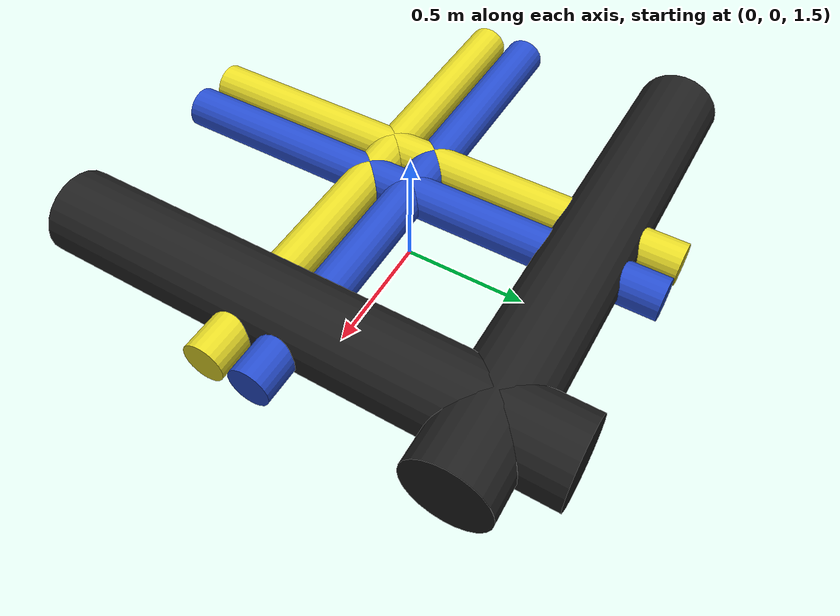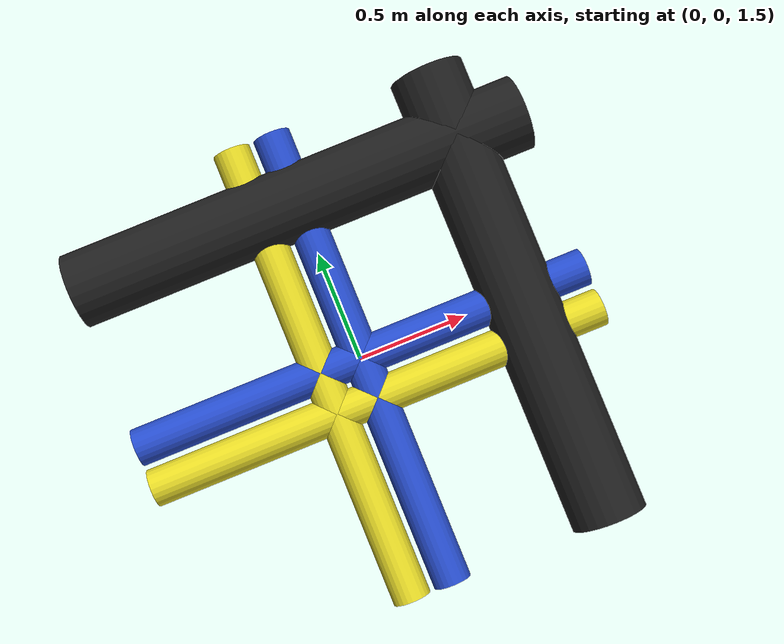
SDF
<?xml version='1.0'?>
<sdf version='1.6'>
  <model name='pipe_one'>
    <static>1</static>
    <pose frame=''>0 0 1.84 0 0 0</pose>
    <link name='link_0'>
      <visual name='visual'>
        <pose frame=''>0 0 0 1.57 0 0</pose>
        <geometry>
          <cylinder>
            <radius>0.08</radius>
            <length>2</length>
          </cylinder>
        </geometry>
        <material>
          <script>
            <uri>file://media/materials/scripts/gazebo.material</uri>
            <name>Gazebo/Blue</name>
          </script>
        </material>
      </visual>
      <collision name='collision'>
        <pose frame=''>0 0 0 1.57 0 0</pose>
        <geometry>
          <cylinder>
            <radius>0.08</radius>
            <length>2</length>
          </cylinder>
        </geometry>
      </collision>
    </link>
  </model>
  <model name='pipe_two'>
    <static>1</static>
    <pose frame=''>0 0 1.84 0 0 0</pose>
    <link name='link_0'>
      <visual name='visual'>
        <pose frame=''>0.7 0 0 1.57 0 0</pose>
        <geometry>
          <cylinder>
            <radius>0.16</radius>
            <length>2</length>
          </cylinder>
        </geometry>
        <material>
          <script>
            <uri>file://media/materials/scripts/gazebo.material</uri>
            <name>Gazebo/Black</name>
          </script>
        </material>
      </visual>
      <collision name='collision'>
        <pose frame=''>0.7 0 0 1.57 0 0</pose>
        <geometry>
          <cylinder>
            <radius>0.16</radius>
            <length>2</length>
          </cylinder>
        </geometry>
      </collision>
    </link>
  </model>
  <model name='pipe_three'>
    <static>1</static>
    <pose frame=''>0 0 1.84 0 0 0</pose>
    <link name='link_0'>
      <visual name='visual'>
        <pose frame=''>-0.18 0 0 1.57 0 0</pose>
        <geometry>
          <cylinder>
            <radius>0.08</radius>
            <length>2</length>
          </cylinder>
        </geometry>
        <material>
          <script>
            <uri>file://media/materials/scripts/gazebo.material</uri>
            <name>Gazebo/Yellow</name>
          </script>
        </material>
      </visual>
      <collision name='collision'>
        <pose frame=''>-0.18 0 0 1.57 0 0</pose>
        <geometry>
          <cylinder>
            <radius>0.08</radius>
            <length>2</length>
          </cylinder>
        </geometry>
      </collision>
    </link>
  </model>
  <model name='pipe_one_1'>
    <static>1</static>
    <pose frame=''>0 0 1.84 0 0 1.57</pose>
    <link name='link_0'>
      <visual name='visual'>
        <pose frame=''>0 0 0 1.57 0 0</pose>
        <geometry>
          <cylinder>
            <radius>0.08</radius>
            <length>2</length>
          </cylinder>
        </geometry>
        <material>
          <script>
            <uri>file://media/materials/scripts/gazebo.material</uri>
            <name>Gazebo/Blue</name>
          </script>
        </material>
      </visual>
      <collision name='collision'>
        <pose frame=''>0 0 0 1.57 0 0</pose>
        <geometry>
          <cylinder>
            <radius>0.08</radius>
            <length>2</length>
          </cylinder>
        </geometry>
      </collision>
    </link>
  </model>
  <model name='pipe_two_1'>
    <static>1</static>
    <pose frame=''>0 0 1.84 0 0 1.57</pose>
    <link name='link_0'>
      <visual name='visual'>
        <pose frame=''>0.7 0 0 1.57 0 0</pose>
        <geometry>
          <cylinder>
            <radius>0.16</radius>
            <length>2</length>
          </cylinder>
        </geometry>
        <material>
          <script>
            <uri>file://media/materials/scripts/gazebo.material</uri>
            <name>Gazebo/Black</name>
          </script>
        </material>
      </visual>
      <collision name='collision'>
        <pose frame=''>0.7 0 0 1.57 0 0</pose>
        <geometry>
          <cylinder>
            <radius>0.16</radius>
            <length>2</length>
          </cylinder>
        </geometry>
      </collision>
    </link>
  </model>
  <model name='pipe_three_1'>
    <static>1</static>
    <pose frame=''>0 0 1.84 0 0 1.57</pose>
    <link name='link_0'>
      <visual name='visual'>
        <pose frame=''>-0.18 0 0 1.57 0 0</pose>
        <geometry>
          <cylinder>
            <radius>0.08</radius>
            <length>2</length>
          </cylinder>
        </geometry>
        <material>
          <script>
            <uri>file://media/materials/scripts/gazebo.material</uri>
            <name>Gazebo/Yellow</name>
          </script>
        </material>
      </visual>
      <collision name='collision'>
        <pose frame=''>-0.18 0 0 1.57 0 0</pose>
        <geometry>
          <cylinder>
            <radius>0.08</radius>
            <length>2</length>
          </cylinder>
        </geometry>
      </collision>
    </link>
  </model>
</sdf>
